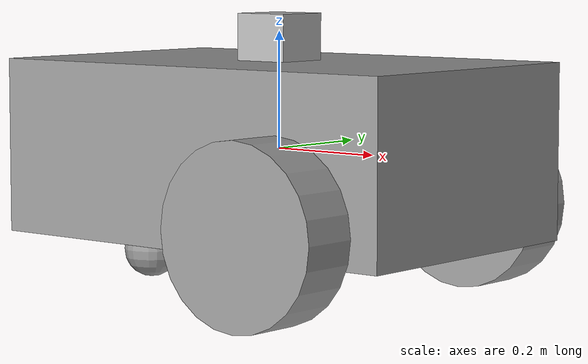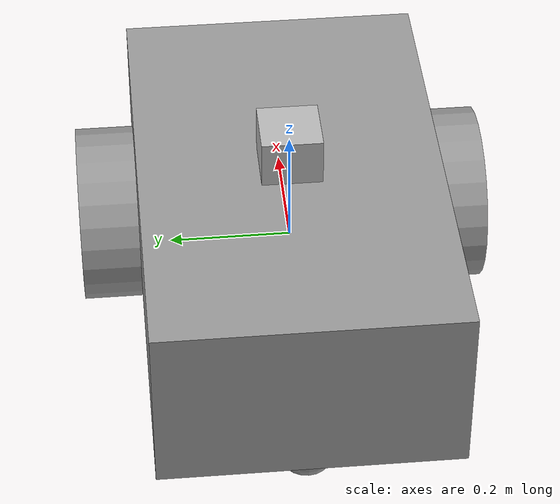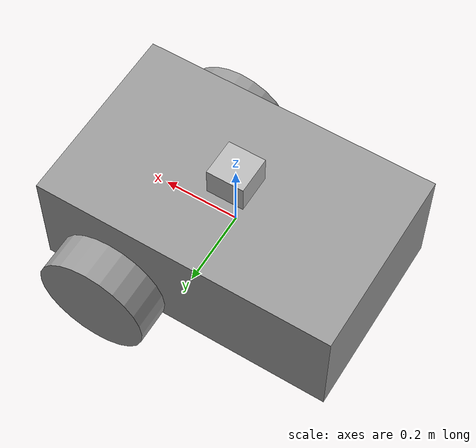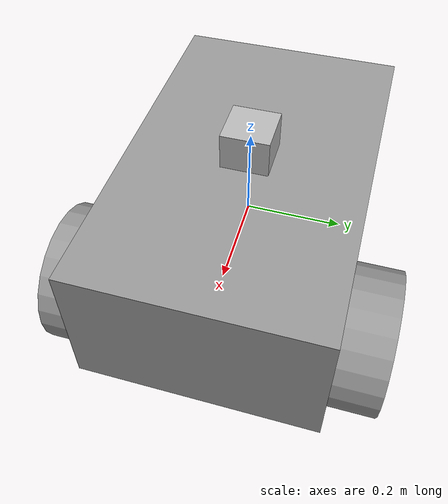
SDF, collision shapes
<?xml version='1.0'?>
<sdf version='1.6'>
  <model name='Tutorial_Robo'>

    <!-- Hokuyo Laser ROS -->
    <link name="hokuyo_link">
      <pose>0 0 0.18 0 0 0</pose>
      <collision name="collision">
        <pose>0 0 0.0 0 0 0</pose>
        <geometry>
          <box>
            <size>0.1 0.1 0.1</size>
          </box>
        </geometry>
      </collision>
      <visual name="visual">
        <pose>0 0 0 0 0 0</pose>
        <geometry>
          <mesh>
            <uri>model://hokuyo/meshes/hokuyo.dae</uri>
          </mesh>
        </geometry>
      </visual>
      <inertial>
        <mass>0.016</mass>
        <inertia>
            <ixx>0.0001</ixx>
            <ixy>0</ixy>
            <ixz>0</ixz>
            <iyy>0.0001</iyy>
            <iyz>0</iyz>
            <izz>0.0001</izz>
            <!-- low intertia necessary to avoid not disturb the drone -->
        </inertia>
      </inertial>

      <sensor type="ray" name="laser">
        <pose>0 0 0.02 0 0 0</pose>
        <visualize>true</visualize>
        <update_rate>10</update_rate>
        <ray>
          <scan>
            <horizontal>
              <samples>128</samples>
              <resolution>1</resolution>
              <min_angle>-0.7854</min_angle>
              <max_angle>0.7854</max_angle>
            </horizontal>
          </scan>
          <range>
            <min>0.1</min>
            <max>30</max>
            <resolution>0.1</resolution>
          </range>
          <noise>
            <type>gaussian</type>
            <mean>0.0</mean>
            <stddev>0.01</stddev>
          </noise>
        </ray>
        <plugin name="hokuyo_node" filename="libgazebo_ros_laser.so">
          <robotNamespace></robotNamespace>
          <topicName>/laser_scan</topicName>
          <frameName>/hokuyo_sensor_link</frameName>
        </plugin>
      </sensor>
    </link>

    <joint name="hokuyo_joint" type="fixed">
      <pose>0 0 0 0 0 0</pose>
      <parent>link_0</parent>
      <child>hokuyo_link</child>
    </joint>
    <!-- FIM Hokuyo Laser -->

    <link name='link_0'> <!-- Chassi -->

      <inertial>
        <mass>1</mass>
        <inertia>
          <ixx>0.166667</ixx>
          <ixy>0</ixy>
          <ixz>0</ixz>
          <iyy>0.166667</iyy>
          <iyz>0</iyz>
          <izz>0.166667</izz>
        </inertia>
        <pose frame=''>0 0 0 0 -0 0</pose>
      </inertial>

      <pose frame=''>0 0 0 0 0 0</pose>
      <gravity>1</gravity>
      <self_collide>0</self_collide>
      <kinematic>0</kinematic>
      <enable_wind>0</enable_wind>

      <visual name='visual'>
        <pose frame=''>0 0 0 0 -0 0</pose>
        <geometry>
          <box>
            <size>0.8 0.5 0.3</size>
          </box>
        </geometry>
        <material>
          <lighting>1</lighting>
          <script>
            <uri>file://media/materials/scripts/gazebo.material</uri>
            <name>Gazebo/Grey</name>
          </script>
          <shader type='vertex'>
            <normal_map>__default__</normal_map>
          </shader>
          <ambient>0.3 0.3 0.3 1</ambient>
          <diffuse>0.7 0.7 0.7 1</diffuse>
          <specular>0.01 0.01 0.01 1</specular>
          <emissive>0 0 0 1</emissive>
        </material>
        <transparency>0</transparency>
        <cast_shadows>1</cast_shadows>
      </visual>

      <collision name='collision'>
        <laser_retro>0</laser_retro>
        <max_contacts>10</max_contacts>
        <pose frame=''>0 0 0 0 -0 0</pose>
        <geometry>
          <box>
            <size>0.8 0.5 0.3</size>
          </box>
        </geometry>
        <surface>
          <friction>
            <ode>
              <mu>1</mu>
              <mu2>1</mu2>
              <fdir1>0 0 0</fdir1>
              <slip1>0</slip1>
              <slip2>0</slip2>
            </ode>
            <torsional>
              <coefficient>1</coefficient>
              <patch_radius>0</patch_radius>
              <surface_radius>0</surface_radius>
              <use_patch_radius>1</use_patch_radius>
              <ode>
                <slip>0</slip>
              </ode>
            </torsional>
          </friction>
          <bounce>
            <restitution_coefficient>0</restitution_coefficient>
            <threshold>1e+06</threshold>
          </bounce>
          <contact>
            <collide_without_contact>0</collide_without_contact>
            <collide_without_contact_bitmask>1</collide_without_contact_bitmask>
            <collide_bitmask>1</collide_bitmask>
            <ode>
              <soft_cfm>0</soft_cfm>
              <soft_erp>0.2</soft_erp>
              <kp>1e+13</kp>
              <kd>1</kd>
              <max_vel>0.01</max_vel>
              <min_depth>0</min_depth>
            </ode>
            <bullet>
              <split_impulse>1</split_impulse>
              <split_impulse_penetration_threshold>-0.01</split_impulse_penetration_threshold>
              <soft_cfm>0</soft_cfm>
              <soft_erp>0.2</soft_erp>
              <kp>1e+13</kp>
              <kd>1</kd>
            </bullet>
          </contact>
        </surface>
      </collision>

    </link>

    <link name='link_1'> <!--Roda esquerda -->
      <inertial>
        <mass>1</mass>
        <inertia>
          <ixx>0.145833</ixx>
          <ixy>0</ixy>
          <ixz>0</ixz>
          <iyy>0.145833</iyy>
          <iyz>0</iyz>
          <izz>0.125</izz>
        </inertia>
        <pose frame=''>0 0 0 0 -0 0</pose>
      </inertial>

      <pose frame=''>0.2 0.3 -0.1 0 0 0</pose>

      <gravity>1</gravity>

      <self_collide>0</self_collide>
      <kinematic>0</kinematic>
      <enable_wind>0</enable_wind>

      <visual name='visual'>
        <pose frame=''>0 0 0 1.5707 -0 0</pose>
        <geometry>
          <cylinder>
            <radius>0.15</radius>
            <length>0.1</length>
          </cylinder>
        </geometry>
        <material>
          <lighting>1</lighting>
          <script>
            <uri>file://media/materials/scripts/gazebo.material</uri>
            <name>Gazebo/Grey</name>
          </script>
          <shader type='vertex'>
            <normal_map>__default__</normal_map>
          </shader>
          <ambient>0.3 0.3 0.3 1</ambient>
          <diffuse>0.7 0.7 0.7 1</diffuse>
          <specular>0.01 0.01 0.01 1</specular>
          <emissive>0 0 0 1</emissive>
        </material>
        <transparency>0</transparency>
        <cast_shadows>1</cast_shadows>
      </visual>

      <collision name='collision'>
        <laser_retro>0</laser_retro>
        <max_contacts>10</max_contacts>
        <pose frame=''>0 0 0 1.5707 -0 0</pose>
        <geometry>
          <cylinder>
            <radius>0.15</radius>
            <length>0.1</length>
          </cylinder>
        </geometry>
        <surface>
          <friction>
            <ode>
              <mu>1</mu>
              <mu2>1</mu2>
              <fdir1>0 0 0</fdir1>
              <slip1>0</slip1>
              <slip2>0</slip2>
            </ode>
            <torsional>
              <coefficient>1</coefficient>
              <patch_radius>0</patch_radius>
              <surface_radius>0</surface_radius>
              <use_patch_radius>1</use_patch_radius>
              <ode>
                <slip>0</slip>
              </ode>
            </torsional>
          </friction>
          <bounce>
            <restitution_coefficient>0</restitution_coefficient>
            <threshold>1e+06</threshold>
          </bounce>
          <contact>
            <collide_without_contact>0</collide_without_contact>
            <collide_without_contact_bitmask>1</collide_without_contact_bitmask>
            <collide_bitmask>1</collide_bitmask>
            <ode>
              <soft_cfm>0</soft_cfm>
              <soft_erp>0.2</soft_erp>
              <kp>1e+13</kp>
              <kd>1</kd>
              <max_vel>0.01</max_vel>
              <min_depth>0</min_depth>
            </ode>
            <bullet>
              <split_impulse>1</split_impulse>
              <split_impulse_penetration_threshold>-0.01</split_impulse_penetration_threshold>
              <soft_cfm>0</soft_cfm>
              <soft_erp>0.2</soft_erp>
              <kp>1e+13</kp>
              <kd>1</kd>
            </bullet>
          </contact>
        </surface>
      </collision>
    </link>

    <link name='link_1_clone'>  <!--Roda direita -->
      <inertial>
        <mass>1</mass>
        <inertia>
          <ixx>0.145833</ixx>
          <ixy>0</ixy>
          <ixz>0</ixz>
          <iyy>0.145833</iyy>
          <iyz>0</iyz>
          <izz>0.125</izz>
        </inertia>
        <pose frame=''>0 0 0 0 -0 0</pose>
      </inertial>
      <pose frame=''>0.2 -0.3 -0.1 0 -0 0</pose>

      <gravity>1</gravity>
      <self_collide>0</self_collide>
      <kinematic>0</kinematic>
      <enable_wind>0</enable_wind>

      <visual name='visual'>
        <pose frame=''>0 0 0 1.5707 -0 0</pose>
        <geometry>
          <cylinder>
            <radius>0.15</radius>
            <length>0.1</length>
          </cylinder>
        </geometry>
        <material>
          <lighting>1</lighting>
          <script>
            <uri>file://media/materials/scripts/gazebo.material</uri>
            <name>Gazebo/Grey</name>
          </script>
          <shader type='vertex'>
            <normal_map>__default__</normal_map>
          </shader>
          <ambient>0.3 0.3 0.3 1</ambient>
          <diffuse>0.7 0.7 0.7 1</diffuse>
          <specular>0.01 0.01 0.01 1</specular>
          <emissive>0 0 0 1</emissive>
        </material>
        <transparency>0</transparency>
        <cast_shadows>1</cast_shadows>
      </visual>

      <collision name='collision'>
        <laser_retro>0</laser_retro>
        <max_contacts>10</max_contacts>
        <pose frame=''>0 0 0 1.5707 -0 0</pose>
        <geometry>
          <cylinder>
            <radius>0.15</radius>
            <length>0.1</length>
          </cylinder>
        </geometry>
        <surface>
          <friction>
            <ode>
              <mu>1</mu>
              <mu2>1</mu2>
              <fdir1>0 0 0</fdir1>
              <slip1>0</slip1>
              <slip2>0</slip2>
            </ode>
            <torsional>
              <coefficient>1</coefficient>
              <patch_radius>0</patch_radius>
              <surface_radius>0</surface_radius>
              <use_patch_radius>1</use_patch_radius>
              <ode>
                <slip>0</slip>
              </ode>
            </torsional>
          </friction>
          <bounce>
            <restitution_coefficient>0</restitution_coefficient>
            <threshold>1e+06</threshold>
          </bounce>
          <contact>
            <collide_without_contact>0</collide_without_contact>
            <collide_without_contact_bitmask>1</collide_without_contact_bitmask>
            <collide_bitmask>1</collide_bitmask>
            <ode>
              <soft_cfm>0</soft_cfm>
              <soft_erp>0.2</soft_erp>
              <kp>1e+13</kp>
              <kd>1</kd>
              <max_vel>0.01</max_vel>
              <min_depth>0</min_depth>
            </ode>
            <bullet>
              <split_impulse>1</split_impulse>
              <split_impulse_penetration_threshold>-0.01</split_impulse_penetration_threshold>
              <soft_cfm>0</soft_cfm>
              <soft_erp>0.2</soft_erp>
              <kp>1e+13</kp>
              <kd>1</kd>
            </bullet>
          </contact>
        </surface>
      </collision>

    </link>

    <link name='link_2'>
      <inertial>
        <mass>1</mass>
        <inertia>
          <ixx>0.1</ixx>
          <ixy>0</ixy>
          <ixz>0</ixz>
          <iyy>0.1</iyy>
          <iyz>0</iyz>
          <izz>0.1</izz>
        </inertia>
        <pose frame=''>0 0 0 0 -0 0</pose>
      </inertial>

      <pose frame=''>-0.3 0 -0.2 0 0 0</pose>

      <gravity>1</gravity>
      <self_collide>0</self_collide>
      <kinematic>0</kinematic>
      <enable_wind>0</enable_wind>

      <visual name='visual'>
        <pose frame=''>0 0 0 0 -0 0</pose>
        <geometry>
          <sphere>
            <radius>0.05</radius>
          </sphere>
        </geometry>
        <material>
          <lighting>1</lighting>
          <script>
            <uri>file://media/materials/scripts/gazebo.material</uri>
            <name>Gazebo/Grey</name>
          </script>
          <shader type='vertex'>
            <normal_map>__default__</normal_map>
          </shader>
          <ambient>0.3 0.3 0.3 1</ambient>
          <diffuse>0.7 0.7 0.7 1</diffuse>
          <specular>0.01 0.01 0.01 1</specular>
          <emissive>0 0 0 1</emissive>
        </material>
        <transparency>0</transparency>
        <cast_shadows>1</cast_shadows>
      </visual>

      <collision name='collision'>
        <laser_retro>0</laser_retro>
        <max_contacts>10</max_contacts>
        <pose frame=''>0 0 0 0 -0 0</pose>
        <geometry>
          <sphere>
            <radius>0.05</radius>
          </sphere>
        </geometry>
        <surface>
          <friction>
            <ode>
              <mu>1</mu>
              <mu2>1</mu2>
              <fdir1>0 0 0</fdir1>
              <slip1>0</slip1>
              <slip2>0</slip2>
            </ode>
            <torsional>
              <coefficient>1</coefficient>
              <patch_radius>0</patch_radius>
              <surface_radius>0</surface_radius>
              <use_patch_radius>1</use_patch_radius>
              <ode>
                <slip>0</slip>
              </ode>
            </torsional>
          </friction>
          <bounce>
            <restitution_coefficient>0</restitution_coefficient>
            <threshold>1e+06</threshold>
          </bounce>
          <contact>
            <collide_without_contact>0</collide_without_contact>
            <collide_without_contact_bitmask>1</collide_without_contact_bitmask>
            <collide_bitmask>1</collide_bitmask>
            <ode>
              <soft_cfm>0</soft_cfm>
              <soft_erp>0.2</soft_erp>
              <kp>1e+13</kp>
              <kd>1</kd>
              <max_vel>0.01</max_vel>
              <min_depth>0</min_depth>
            </ode>
            <bullet>
              <split_impulse>1</split_impulse>
              <split_impulse_penetration_threshold>-0.01</split_impulse_penetration_threshold>
              <soft_cfm>0</soft_cfm>
              <soft_erp>0.2</soft_erp>
              <kp>1e+13</kp>
              <kd>1</kd>
            </bullet>
          </contact>
        </surface>
      </collision>

    </link>

    <joint name='link_0_JOINT_0' type='revolute'>
      <parent>link_0</parent>
      <child>link_1</child>
      <pose frame=''>0 0 0 0 -0 0</pose>
      <axis>
        <xyz>0 1 0</xyz>
        <use_parent_model_frame>0</use_parent_model_frame>
        <limit>
          <lower>-1.79769e+308</lower>
          <upper>1.79769e+308</upper>
          <effort>-1</effort>
          <velocity>-1</velocity>
        </limit>
        <dynamics>
          <spring_reference>0</spring_reference>
          <spring_stiffness>0</spring_stiffness>
          <damping>0</damping>
        </dynamics>
      </axis>
      <physics>
        <ode>
          <limit>
            <cfm>0</cfm>
            <erp>0.2</erp>
          </limit>
          <suspension>
            <cfm>0</cfm>
            <erp>0.2</erp>
          </suspension>
        </ode>
      </physics>
    </joint>

    <joint name='link_0_JOINT_16' type='ball'>
      <parent>link_0</parent>
      <child>link_2</child>
      <pose frame=''>0 0 0 0 -0 0</pose>
      <physics>
        <ode>
          <limit>
            <cfm>0</cfm>
            <erp>0.2</erp>
          </limit>
          <suspension>
            <cfm>0</cfm>
            <erp>0.2</erp>
          </suspension>
        </ode>
      </physics>
    </joint>

    <joint name='link_0_JOINT_1' type='revolute'>
      <parent>link_0</parent>
      <child>link_1_clone</child>
      <pose frame=''>0 0 0 0 -0 0</pose>
      <axis>
        <xyz>0 1 0</xyz>
        <use_parent_model_frame>0</use_parent_model_frame>
        <limit>
          <lower>-1.79769e+308</lower>
          <upper>1.79769e+308</upper>
          <effort>-1</effort>
          <velocity>-1</velocity>
        </limit>
        <dynamics>
          <spring_reference>0</spring_reference>
          <spring_stiffness>0</spring_stiffness>
          <damping>0</damping>
        </dynamics>
      </axis>
      <physics>
        <ode>
          <limit>
            <cfm>0</cfm>
            <erp>0.2</erp>
          </limit>
          <suspension>
            <cfm>0</cfm>
            <erp>0.2</erp>
          </suspension>
        </ode>
      </physics>
    </joint>

    <plugin name="differential_drive_controller" filename="libgazebo_ros_diff_drive.so">

      <!-- Plugin update rate in Hz -->
      <updateRate>50</updateRate>

      <!-- Name of left joint, defaults to `left_joint` -->
      <leftJoint>link_0_JOINT_0</leftJoint>

      <!-- Name of right joint, defaults to `right_joint` -->
      <rightJoint>link_0_JOINT_1</rightJoint>

      <!-- The distance from the center of one wheel to the other, in meters, defaults to 0.34 m -->
      <wheelSeparation>0.6</wheelSeparation>

      <!-- Diameter of the wheels, in meters, defaults to 0.15 m -->
      <wheelDiameter>0.3</wheelDiameter>

      <!-- Wheel acceleration, in rad/s^2, defaults to 0.0 rad/s^2 -->
      <wheelAcceleration>1.0</wheelAcceleration>

      <!-- Maximum torque which the wheels can produce, in Nm, defaults to 5 Nm -->
      <wheelTorque>5</wheelTorque>

      <!-- Topic to receive geometry_msgs/Twist message commands, defaults to `cmd_vel` -->
      <commandTopic>cmd_vel</commandTopic>

      <!-- Topic to publish nav_msgs/Odometry messages, defaults to `odom` -->
      <odometryTopic>odom</odometryTopic>

      <!-- Odometry frame, defaults to `odom` -->
      <odometryFrame>odom</odometryFrame>

      <!-- Robot frame to calculate odometry from, defaults to `base_footprint` -->
      <robotBaseFrame>link_0</robotBaseFrame>

      <!-- Odometry source, 0 for ENCODER, 1 for WORLD, defaults to WORLD -->
      <odometrySource>1</odometrySource>

      <!-- Set to true to publish transforms for the wheel links, defaults to false -->
      <publishWheelTF>true</publishWheelTF>

      <!-- Set to true to publish transforms for the odometry, defaults to true -->
      <publishOdom>true</publishOdom>

      <!-- Set to true to publish sensor_msgs/JointState on /joint_states for the wheel joints, defaults to false -->
      <publishWheelJointState>true</publishWheelJointState>

      <!-- Set to true to swap right and left wheels, defaults to true -->
      <legacyMode>false</legacyMode>
    </plugin>

    <static>0</static>
    <allow_auto_disable>1</allow_auto_disable>
  </model>
</sdf>
